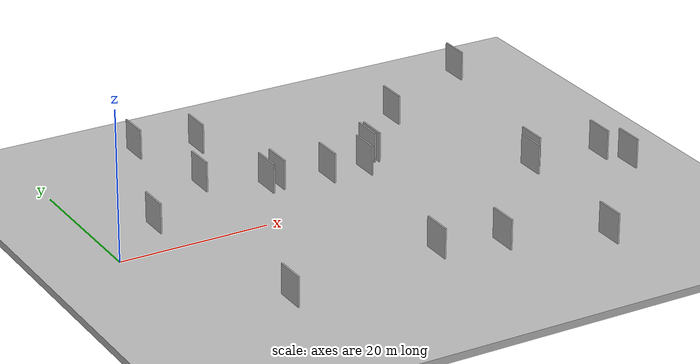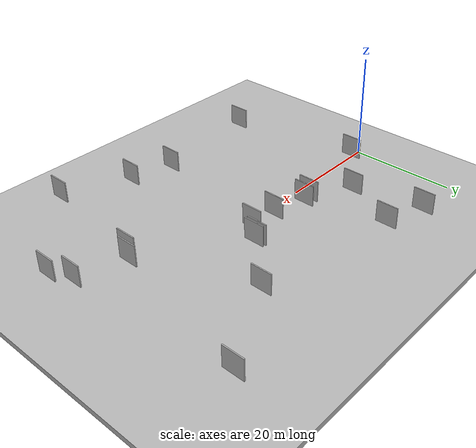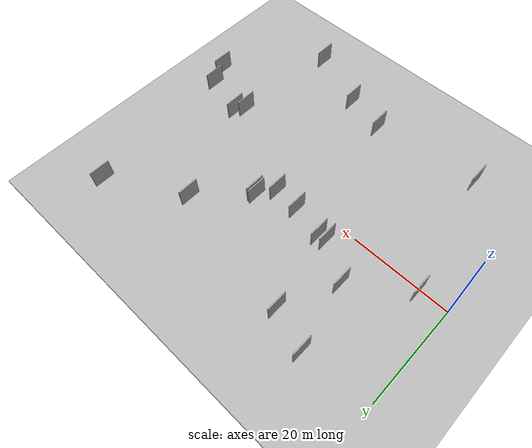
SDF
<?xml version="1.0" encoding="utf-8"?>

<sdf version="1.6">

   <world name="default">

      <gui fullscreen="0">

         <camera name="user_camera">

            <pose>-15 0 4.57585 0 0 0</pose>

            <view_controller>orbit</view_controller>

         </camera>

      </gui>

      <scene>

         <sky>

           <clouds>

             <speed>12</speed>

           </clouds>

         </sky>

         <ambient>0.4 0.4 0.4 1</ambient>

         <background>0.7 0.7 0.7 1</background>

         <shadows>1</shadows>

      </scene>

      <gravity>0 0 -9.8066</gravity>

      <magnetic_field>6e-06 2.3e-05 -4.2e-05</magnetic_field>

      <physics default="0" name="default_physics" type="ode">

         <ode>

            <solver>

               <type>quick</type>

               <iters>10</iters>

               <sor>1.0</sor>

               <use_dynamic_moi_rescaling>0</use_dynamic_moi_rescaling>

            </solver>

            <constraints>

               <cfm>0</cfm>

               <erp>0.2</erp>

               <contact_max_correcting_vel>100</contact_max_correcting_vel>

               <contact_surface_layer>0.001</contact_surface_layer>

            </constraints>

         </ode>

         <max_step_size>0.004</max_step_size>

         <real_time_factor>1</real_time_factor>

         <real_time_update_rate>250</real_time_update_rate>

      </physics>

      <light name="sun" type="directional">

         <cast_shadows>1</cast_shadows>

         <pose>0 0 10 0 0 0</pose>

         <diffuse>0.8 0.8 0.8 1</diffuse>

         <specular>0.2 0.2 0.2 1</specular>

         <attenuation>

            <range>1000</range>

            <constant>0.9</constant>

            <linear>0.01</linear>

            <quadratic>0.001</quadratic>

         </attenuation>

         <direction>-0.5 0.1 -0.9</direction>

      </light>

      <include>

         <name>ground_plane_1</name>

         <uri>model://HANNAS_ground_plane</uri>

         <pose>0 0 0  0 0 0</pose>

      </include>

      <include>

         <name>ground_plane_2</name>

         <uri>model://HANNAS_ground_plane</uri>

         <pose>100 0 0  0 0 0</pose>

      </include>

      <model name="HANNAS_wall_1">

         <static>1</static>

         <pose frame="">54.1508 -6.5935 2.5 0.000000 0.000000 1.570796</pose>

         <link name="link">

            <pose frame="">0 0 2.00 0 0 0</pose>

            <collision name="collision">

               <geometry>

                  <box>

                     <size>4.00 0.2 4.00</size>

                  </box>

               </geometry>

               <max_contacts>10</max_contacts>

               <surface>

                  <contact>

                     <ode/>

                  </contact>

                  <bounce/>

                  <friction>

                     <torsional>

                        <ode/>

                     </torsional>

                     <ode/>

                  </friction>

               </surface>

            </collision>

            <visual name="visual">

               <cast_shadows>0</cast_shadows>

               <geometry>

                  <box>

                     <size>4.00 0.2 4.00</size>

                  </box>

               </geometry>

               <material>

                  <script>

                     <uri>model://HANNAS_wall/materials/scripts</uri>

                     <uri>model://HANNAS_wall/materials/textures</uri>

                     <name>vrc/HANNAS_wall</name>

                  </script>

               </material>

            </visual>

            <self_collide>0</self_collide>

            <enable_wind>0</enable_wind>

            <kinematic>0</kinematic>

         </link>

      </model>

      <model name="HANNAS_wall_2">

         <static>1</static>

         <pose frame="">35.8969 3.4555 2.5 0.000000 0.000000 1.570796</pose>

         <link name="link">

            <pose frame="">0 0 2.00 0 0 0</pose>

            <collision name="collision">

               <geometry>

                  <box>

                     <size>4.00 0.2 4.00</size>

                  </box>

               </geometry>

               <max_contacts>10</max_contacts>

               <surface>

                  <contact>

                     <ode/>

                  </contact>

                  <bounce/>

                  <friction>

                     <torsional>

                        <ode/>

                     </torsional>

                     <ode/>

                  </friction>

               </surface>

            </collision>

            <visual name="visual">

               <cast_shadows>0</cast_shadows>

               <geometry>

                  <box>

                     <size>4.00 0.2 4.00</size>

                  </box>

               </geometry>

               <material>

                  <script>

                     <uri>model://HANNAS_wall/materials/scripts</uri>

                     <uri>model://HANNAS_wall/materials/textures</uri>

                     <name>vrc/HANNAS_wall</name>

                  </script>

               </material>

            </visual>

            <self_collide>0</self_collide>

            <enable_wind>0</enable_wind>

            <kinematic>0</kinematic>

         </link>

      </model>

      <model name="HANNAS_wall_3">

         <static>1</static>

         <pose frame="">10.6538 -22.9166 2.5 0.000000 0.000000 1.570796</pose>

         <link name="link">

            <pose frame="">0 0 2.00 0 0 0</pose>

            <collision name="collision">

               <geometry>

                  <box>

                     <size>4.00 0.2 4.00</size>

                  </box>

               </geometry>

               <max_contacts>10</max_contacts>

               <surface>

                  <contact>

                     <ode/>

                  </contact>

                  <bounce/>

                  <friction>

                     <torsional>

                        <ode/>

                     </torsional>

                     <ode/>

                  </friction>

               </surface>

            </collision>

            <visual name="visual">

               <cast_shadows>0</cast_shadows>

               <geometry>

                  <box>

                     <size>4.00 0.2 4.00</size>

                  </box>

               </geometry>

               <material>

                  <script>

                     <uri>model://HANNAS_wall/materials/scripts</uri>

                     <uri>model://HANNAS_wall/materials/textures</uri>

                     <name>vrc/HANNAS_wall</name>

                  </script>

               </material>

            </visual>

            <self_collide>0</self_collide>

            <enable_wind>0</enable_wind>

            <kinematic>0</kinematic>

         </link>

      </model>

      <model name="HANNAS_wall_4">

         <static>1</static>

         <pose frame="">39.6951 -22.6798 2.5 0.000000 0.000000 1.570796</pose>

         <link name="link">

            <pose frame="">0 0 2.00 0 0 0</pose>

            <collision name="collision">

               <geometry>

                  <box>

                     <size>4.00 0.2 4.00</size>

                  </box>

               </geometry>

               <max_contacts>10</max_contacts>

               <surface>

                  <contact>

                     <ode/>

                  </contact>

                  <bounce/>

                  <friction>

                     <torsional>

                        <ode/>

                     </torsional>

                     <ode/>

                  </friction>

               </surface>

            </collision>

            <visual name="visual">

               <cast_shadows>0</cast_shadows>

               <geometry>

                  <box>

                     <size>4.00 0.2 4.00</size>

                  </box>

               </geometry>

               <material>

                  <script>

                     <uri>model://HANNAS_wall/materials/scripts</uri>

                     <uri>model://HANNAS_wall/materials/textures</uri>

                     <name>vrc/HANNAS_wall</name>

                  </script>

               </material>

            </visual>

            <self_collide>0</self_collide>

            <enable_wind>0</enable_wind>

            <kinematic>0</kinematic>

         </link>

      </model>

      <model name="HANNAS_wall_5">

         <static>1</static>

         <pose frame="">12.8895 22.1530 2.5 0.000000 0.000000 1.570796</pose>

         <link name="link">

            <pose frame="">0 0 2.00 0 0 0</pose>

            <collision name="collision">

               <geometry>

                  <box>

                     <size>4.00 0.2 4.00</size>

                  </box>

               </geometry>

               <max_contacts>10</max_contacts>

               <surface>

                  <contact>

                     <ode/>

                  </contact>

                  <bounce/>

                  <friction>

                     <torsional>

                        <ode/>

                     </torsional>

                     <ode/>

                  </friction>

               </surface>

            </collision>

            <visual name="visual">

               <cast_shadows>0</cast_shadows>

               <geometry>

                  <box>

                     <size>4.00 0.2 4.00</size>

                  </box>

               </geometry>

               <material>

                  <script>

                     <uri>model://HANNAS_wall/materials/scripts</uri>

                     <uri>model://HANNAS_wall/materials/textures</uri>

                     <name>vrc/HANNAS_wall</name>

                  </script>

               </material>

            </visual>

            <self_collide>0</self_collide>

            <enable_wind>0</enable_wind>

            <kinematic>0</kinematic>

         </link>

      </model>

      <model name="HANNAS_wall_6">

         <static>1</static>

         <pose frame="">20.5125 19.7068 2.5 0.000000 0.000000 1.570796</pose>

         <link name="link">

            <pose frame="">0 0 2.00 0 0 0</pose>

            <collision name="collision">

               <geometry>

                  <box>

                     <size>4.00 0.2 4.00</size>

                  </box>

               </geometry>

               <max_contacts>10</max_contacts>

               <surface>

                  <contact>

                     <ode/>

                  </contact>

                  <bounce/>

                  <friction>

                     <torsional>

                        <ode/>

                     </torsional>

                     <ode/>

                  </friction>

               </surface>

            </collision>

            <visual name="visual">

               <cast_shadows>0</cast_shadows>

               <geometry>

                  <box>

                     <size>4.00 0.2 4.00</size>

                  </box>

               </geometry>

               <material>

                  <script>

                     <uri>model://HANNAS_wall/materials/scripts</uri>

                     <uri>model://HANNAS_wall/materials/textures</uri>

                     <name>vrc/HANNAS_wall</name>

                  </script>

               </material>

            </visual>

            <self_collide>0</self_collide>

            <enable_wind>0</enable_wind>

            <kinematic>0</kinematic>

         </link>

      </model>

      <model name="HANNAS_wall_7">

         <static>1</static>

         <pose frame="">5.5420 1.8438 2.5 0.000000 0.000000 1.570796</pose>

         <link name="link">

            <pose frame="">0 0 2.00 0 0 0</pose>

            <collision name="collision">

               <geometry>

                  <box>

                     <size>4.00 0.2 4.00</size>

                  </box>

               </geometry>

               <max_contacts>10</max_contacts>

               <surface>

                  <contact>

                     <ode/>

                  </contact>

                  <bounce/>

                  <friction>

                     <torsional>

                        <ode/>

                     </torsional>

                     <ode/>

                  </friction>

               </surface>

            </collision>

            <visual name="visual">

               <cast_shadows>0</cast_shadows>

               <geometry>

                  <box>

                     <size>4.00 0.2 4.00</size>

                  </box>

               </geometry>

               <material>

                  <script>

                     <uri>model://HANNAS_wall/materials/scripts</uri>

                     <uri>model://HANNAS_wall/materials/textures</uri>

                     <name>vrc/HANNAS_wall</name>

                  </script>

               </material>

            </visual>

            <self_collide>0</self_collide>

            <enable_wind>0</enable_wind>

            <kinematic>0</kinematic>

         </link>

      </model>

      <model name="HANNAS_wall_8">

         <static>1</static>

         <pose frame="">51.6400 -27.6356 2.5 0.000000 0.000000 1.570796</pose>

         <link name="link">

            <pose frame="">0 0 2.00 0 0 0</pose>

            <collision name="collision">

               <geometry>

                  <box>

                     <size>4.00 0.2 4.00</size>

                  </box>

               </geometry>

               <max_contacts>10</max_contacts>

               <surface>

                  <contact>

                     <ode/>

                  </contact>

                  <bounce/>

                  <friction>

                     <torsional>

                        <ode/>

                     </torsional>

                     <ode/>

                  </friction>

               </surface>

            </collision>

            <visual name="visual">

               <cast_shadows>0</cast_shadows>

               <geometry>

                  <box>

                     <size>4.00 0.2 4.00</size>

                  </box>

               </geometry>

               <material>

                  <script>

                     <uri>model://HANNAS_wall/materials/scripts</uri>

                     <uri>model://HANNAS_wall/materials/textures</uri>

                     <name>vrc/HANNAS_wall</name>

                  </script>

               </material>

            </visual>

            <self_collide>0</self_collide>

            <enable_wind>0</enable_wind>

            <kinematic>0</kinematic>

         </link>

      </model>

      <model name="HANNAS_wall_9">

         <static>1</static>

         <pose frame="">55.4228 -4.8063 2.5 0.000000 0.000000 1.570796</pose>

         <link name="link">

            <pose frame="">0 0 2.00 0 0 0</pose>

            <collision name="collision">

               <geometry>

                  <box>

                     <size>4.00 0.2 4.00</size>

                  </box>

               </geometry>

               <max_contacts>10</max_contacts>

               <surface>

                  <contact>

                     <ode/>

                  </contact>

                  <bounce/>

                  <friction>

                     <torsional>

                        <ode/>

                     </torsional>

                     <ode/>

                  </friction>

               </surface>

            </collision>

            <visual name="visual">

               <cast_shadows>0</cast_shadows>

               <geometry>

                  <box>

                     <size>4.00 0.2 4.00</size>

                  </box>

               </geometry>

               <material>

                  <script>

                     <uri>model://HANNAS_wall/materials/scripts</uri>

                     <uri>model://HANNAS_wall/materials/textures</uri>

                     <name>vrc/HANNAS_wall</name>

                  </script>

               </material>

            </visual>

            <self_collide>0</self_collide>

            <enable_wind>0</enable_wind>

            <kinematic>0</kinematic>

         </link>

      </model>

      <model name="HANNAS_wall_10">

         <static>1</static>

         <pose frame="">15.7157 9.4574 2.5 0.000000 0.000000 1.570796</pose>

         <link name="link">

            <pose frame="">0 0 2.00 0 0 0</pose>

            <collision name="collision">

               <geometry>

                  <box>

                     <size>4.00 0.2 4.00</size>

                  </box>

               </geometry>

               <max_contacts>10</max_contacts>

               <surface>

                  <contact>

                     <ode/>

                  </contact>

                  <bounce/>

                  <friction>

                     <torsional>

                        <ode/>

                     </torsional>

                     <ode/>

                  </friction>

               </surface>

            </collision>

            <visual name="visual">

               <cast_shadows>0</cast_shadows>

               <geometry>

                  <box>

                     <size>4.00 0.2 4.00</size>

                  </box>

               </geometry>

               <material>

                  <script>

                     <uri>model://HANNAS_wall/materials/scripts</uri>

                     <uri>model://HANNAS_wall/materials/textures</uri>

                     <name>vrc/HANNAS_wall</name>

                  </script>

               </material>

            </visual>

            <self_collide>0</self_collide>

            <enable_wind>0</enable_wind>

            <kinematic>0</kinematic>

         </link>

      </model>

      <model name="HANNAS_wall_11">

         <static>1</static>

         <pose frame="">65.7939 -11.2280 2.5 0.000000 0.000000 1.570796</pose>

         <link name="link">

            <pose frame="">0 0 2.00 0 0 0</pose>

            <collision name="collision">

               <geometry>

                  <box>

                     <size>4.00 0.2 4.00</size>

                  </box>

               </geometry>

               <max_contacts>10</max_contacts>

               <surface>

                  <contact>

                     <ode/>

                  </contact>

                  <bounce/>

                  <friction>

                     <torsional>

                        <ode/>

                     </torsional>

                     <ode/>

                  </friction>

               </surface>

            </collision>

            <visual name="visual">

               <cast_shadows>0</cast_shadows>

               <geometry>

                  <box>

                     <size>4.00 0.2 4.00</size>

                  </box>

               </geometry>

               <material>

                  <script>

                     <uri>model://HANNAS_wall/materials/scripts</uri>

                     <uri>model://HANNAS_wall/materials/textures</uri>

                     <name>vrc/HANNAS_wall</name>

                  </script>

               </material>

            </visual>

            <self_collide>0</self_collide>

            <enable_wind>0</enable_wind>

            <kinematic>0</kinematic>

         </link>

      </model>

      <model name="HANNAS_wall_12">

         <static>1</static>

         <pose frame="">64.0419 -7.2971 2.5 0.000000 0.000000 1.570796</pose>

         <link name="link">

            <pose frame="">0 0 2.00 0 0 0</pose>

            <collision name="collision">

               <geometry>

                  <box>

                     <size>4.00 0.2 4.00</size>

                  </box>

               </geometry>

               <max_contacts>10</max_contacts>

               <surface>

                  <contact>

                     <ode/>

                  </contact>

                  <bounce/>

                  <friction>

                     <torsional>

                        <ode/>

                     </torsional>

                     <ode/>

                  </friction>

               </surface>

            </collision>

            <visual name="visual">

               <cast_shadows>0</cast_shadows>

               <geometry>

                  <box>

                     <size>4.00 0.2 4.00</size>

                  </box>

               </geometry>

               <material>

                  <script>

                     <uri>model://HANNAS_wall/materials/scripts</uri>

                     <uri>model://HANNAS_wall/materials/textures</uri>

                     <name>vrc/HANNAS_wall</name>

                  </script>

               </material>

            </visual>

            <self_collide>0</self_collide>

            <enable_wind>0</enable_wind>

            <kinematic>0</kinematic>

         </link>

      </model>

      <model name="HANNAS_wall_13">

         <static>1</static>

         <pose frame="">38.6860 6.4402 2.5 0.000000 0.000000 1.570796</pose>

         <link name="link">

            <pose frame="">0 0 2.00 0 0 0</pose>

            <collision name="collision">

               <geometry>

                  <box>

                     <size>4.00 0.2 4.00</size>

                  </box>

               </geometry>

               <max_contacts>10</max_contacts>

               <surface>

                  <contact>

                     <ode/>

                  </contact>

                  <bounce/>

                  <friction>

                     <torsional>

                        <ode/>

                     </torsional>

                     <ode/>

                  </friction>

               </surface>

            </collision>

            <visual name="visual">

               <cast_shadows>0</cast_shadows>

               <geometry>

                  <box>

                     <size>4.00 0.2 4.00</size>

                  </box>

               </geometry>

               <material>

                  <script>

                     <uri>model://HANNAS_wall/materials/scripts</uri>

                     <uri>model://HANNAS_wall/materials/textures</uri>

                     <name>vrc/HANNAS_wall</name>

                  </script>

               </material>

            </visual>

            <self_collide>0</self_collide>

            <enable_wind>0</enable_wind>

            <kinematic>0</kinematic>

         </link>

      </model>

      <model name="HANNAS_wall_14">

         <static>1</static>

         <pose frame="">31.6477 -20.7606 2.5 0.000000 0.000000 1.570796</pose>

         <link name="link">

            <pose frame="">0 0 2.00 0 0 0</pose>

            <collision name="collision">

               <geometry>

                  <box>

                     <size>4.00 0.2 4.00</size>

                  </box>

               </geometry>

               <max_contacts>10</max_contacts>

               <surface>

                  <contact>

                     <ode/>

                  </contact>

                  <bounce/>

                  <friction>

                     <torsional>

                        <ode/>

                     </torsional>

                     <ode/>

                  </friction>

               </surface>

            </collision>

            <visual name="visual">

               <cast_shadows>0</cast_shadows>

               <geometry>

                  <box>

                     <size>4.00 0.2 4.00</size>

                  </box>

               </geometry>

               <material>

                  <script>

                     <uri>model://HANNAS_wall/materials/scripts</uri>

                     <uri>model://HANNAS_wall/materials/textures</uri>

                     <name>vrc/HANNAS_wall</name>

                  </script>

               </material>

            </visual>

            <self_collide>0</self_collide>

            <enable_wind>0</enable_wind>

            <kinematic>0</kinematic>

         </link>

      </model>

      <model name="HANNAS_wall_15">

         <static>1</static>

         <pose frame="">46.7528 15.1093 2.5 0.000000 0.000000 1.570796</pose>

         <link name="link">

            <pose frame="">0 0 2.00 0 0 0</pose>

            <collision name="collision">

               <geometry>

                  <box>

                     <size>4.00 0.2 4.00</size>

                  </box>

               </geometry>

               <max_contacts>10</max_contacts>

               <surface>

                  <contact>

                     <ode/>

                  </contact>

                  <bounce/>

                  <friction>

                     <torsional>

                        <ode/>

                     </torsional>

                     <ode/>

                  </friction>

               </surface>

            </collision>

            <visual name="visual">

               <cast_shadows>0</cast_shadows>

               <geometry>

                  <box>

                     <size>4.00 0.2 4.00</size>

                  </box>

               </geometry>

               <material>

                  <script>

                     <uri>model://HANNAS_wall/materials/scripts</uri>

                     <uri>model://HANNAS_wall/materials/textures</uri>

                     <name>vrc/HANNAS_wall</name>

                  </script>

               </material>

            </visual>

            <self_collide>0</self_collide>

            <enable_wind>0</enable_wind>

            <kinematic>0</kinematic>

         </link>

      </model>

      <model name="HANNAS_wall_16">

         <static>1</static>

         <pose frame="">38.1207 6.6024 2.5 0.000000 0.000000 1.570796</pose>

         <link name="link">

            <pose frame="">0 0 2.00 0 0 0</pose>

            <collision name="collision">

               <geometry>

                  <box>

                     <size>4.00 0.2 4.00</size>

                  </box>

               </geometry>

               <max_contacts>10</max_contacts>

               <surface>

                  <contact>

                     <ode/>

                  </contact>

                  <bounce/>

                  <friction>

                     <torsional>

                        <ode/>

                     </torsional>

                     <ode/>

                  </friction>

               </surface>

            </collision>

            <visual name="visual">

               <cast_shadows>0</cast_shadows>

               <geometry>

                  <box>

                     <size>4.00 0.2 4.00</size>

                  </box>

               </geometry>

               <material>

                  <script>

                     <uri>model://HANNAS_wall/materials/scripts</uri>

                     <uri>model://HANNAS_wall/materials/textures</uri>

                     <name>vrc/HANNAS_wall</name>

                  </script>

               </material>

            </visual>

            <self_collide>0</self_collide>

            <enable_wind>0</enable_wind>

            <kinematic>0</kinematic>

         </link>

      </model>

      <model name="HANNAS_wall_17">

         <static>1</static>

         <pose frame="">24.3533 5.2364 2.5 0.000000 0.000000 1.570796</pose>

         <link name="link">

            <pose frame="">0 0 2.00 0 0 0</pose>

            <collision name="collision">

               <geometry>

                  <box>

                     <size>4.00 0.2 4.00</size>

                  </box>

               </geometry>

               <max_contacts>10</max_contacts>

               <surface>

                  <contact>

                     <ode/>

                  </contact>

                  <bounce/>

                  <friction>

                     <torsional>

                        <ode/>

                     </torsional>

                     <ode/>

                  </friction>

               </surface>

            </collision>

            <visual name="visual">

               <cast_shadows>0</cast_shadows>

               <geometry>

                  <box>

                     <size>4.00 0.2 4.00</size>

                  </box>

               </geometry>

               <material>

                  <script>

                     <uri>model://HANNAS_wall/materials/scripts</uri>

                     <uri>model://HANNAS_wall/materials/textures</uri>

                     <name>vrc/HANNAS_wall</name>

                  </script>

               </material>

            </visual>

            <self_collide>0</self_collide>

            <enable_wind>0</enable_wind>

            <kinematic>0</kinematic>

         </link>

      </model>

      <model name="HANNAS_wall_18">

         <static>1</static>

         <pose frame="">61.4782 23.3725 2.5 0.000000 0.000000 1.570796</pose>

         <link name="link">

            <pose frame="">0 0 2.00 0 0 0</pose>

            <collision name="collision">

               <geometry>

                  <box>

                     <size>4.00 0.2 4.00</size>

                  </box>

               </geometry>

               <max_contacts>10</max_contacts>

               <surface>

                  <contact>

                     <ode/>

                  </contact>

                  <bounce/>

                  <friction>

                     <torsional>

                        <ode/>

                     </torsional>

                     <ode/>

                  </friction>

               </surface>

            </collision>

            <visual name="visual">

               <cast_shadows>0</cast_shadows>

               <geometry>

                  <box>

                     <size>4.00 0.2 4.00</size>

                  </box>

               </geometry>

               <material>

                  <script>

                     <uri>model://HANNAS_wall/materials/scripts</uri>

                     <uri>model://HANNAS_wall/materials/textures</uri>

                     <name>vrc/HANNAS_wall</name>

                  </script>

               </material>

            </visual>

            <self_collide>0</self_collide>

            <enable_wind>0</enable_wind>

            <kinematic>0</kinematic>

         </link>

      </model>

      <model name="HANNAS_wall_19">

         <static>1</static>

         <pose frame="">22.7050 4.9643 2.5 0.000000 0.000000 1.570796</pose>

         <link name="link">

            <pose frame="">0 0 2.00 0 0 0</pose>

            <collision name="collision">

               <geometry>

                  <box>

                     <size>4.00 0.2 4.00</size>

                  </box>

               </geometry>

               <max_contacts>10</max_contacts>

               <surface>

                  <contact>

                     <ode/>

                  </contact>

                  <bounce/>

                  <friction>

                     <torsional>

                        <ode/>

                     </torsional>

                     <ode/>

                  </friction>

               </surface>

            </collision>

            <visual name="visual">

               <cast_shadows>0</cast_shadows>

               <geometry>

                  <box>

                     <size>4.00 0.2 4.00</size>

                  </box>

               </geometry>

               <material>

                  <script>

                     <uri>model://HANNAS_wall/materials/scripts</uri>

                     <uri>model://HANNAS_wall/materials/textures</uri>

                     <name>vrc/HANNAS_wall</name>

                  </script>

               </material>

            </visual>

            <self_collide>0</self_collide>

            <enable_wind>0</enable_wind>

            <kinematic>0</kinematic>

         </link>

      </model>

      <model name="HANNAS_wall_20">

         <static>1</static>

         <pose frame="">30.7352 3.8316 2.5 0.000000 0.000000 1.570796</pose>

         <link name="link">

            <pose frame="">0 0 2.00 0 0 0</pose>

            <collision name="collision">

               <geometry>

                  <box>

                     <size>4.00 0.2 4.00</size>

                  </box>

               </geometry>

               <max_contacts>10</max_contacts>

               <surface>

                  <contact>

                     <ode/>

                  </contact>

                  <bounce/>

                  <friction>

                     <torsional>

                        <ode/>

                     </torsional>

                     <ode/>

                  </friction>

               </surface>

            </collision>

            <visual name="visual">

               <cast_shadows>0</cast_shadows>

               <geometry>

                  <box>

                     <size>4.00 0.2 4.00</size>

                  </box>

               </geometry>

               <material>

                  <script>

                     <uri>model://HANNAS_wall/materials/scripts</uri>

                     <uri>model://HANNAS_wall/materials/textures</uri>

                     <name>vrc/HANNAS_wall</name>

                  </script>

               </material>

            </visual>

            <self_collide>0</self_collide>

            <enable_wind>0</enable_wind>

            <kinematic>0</kinematic>

         </link>

      </model>

   </world>

</sdf>

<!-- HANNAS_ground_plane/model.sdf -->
<sdf version="1.4">
<model name="HANNAS_ground_plane">
  <static>true</static>
    <link name="link">
      <collision name="collision">
        <geometry>
          <plane>
            <normal>0 0 1</normal>
            <size>1000 1000</size>
          </plane>
        </geometry>
        <surface>
          <friction>
            <ode>
              <mu>100</mu>
              <mu2>50</mu2>
            </ode>
          </friction>
        </surface>
      </collision>
      <visual name="visual">
        <cast_shadows>false</cast_shadows>
        <geometry>
          <plane>
            <normal>0 0 1</normal>
            <size>1000 1000</size>
          </plane>
        </geometry>
        <material>
          <script>
            <uri>model://HANNAS_ground_plane/materials/scripts/HANNAS_ground_plane.material</uri>
	    <uri>model://HANNAS_ground_plane/materials/textures</uri>
            <name>HANNASGroundPlane/Image</name>
          </script>
        </material>
      </visual>
    </link>
  </model>
</sdf>
